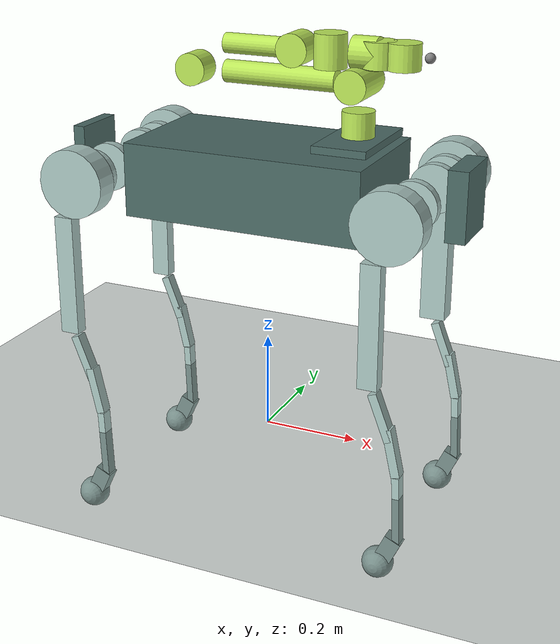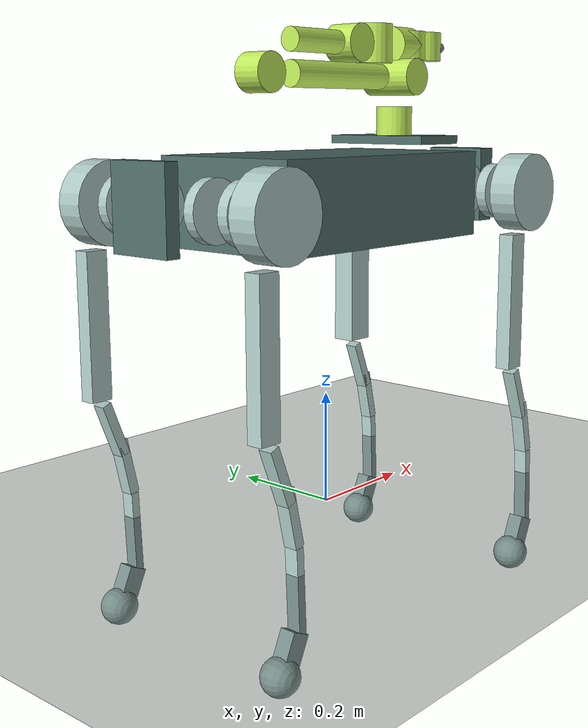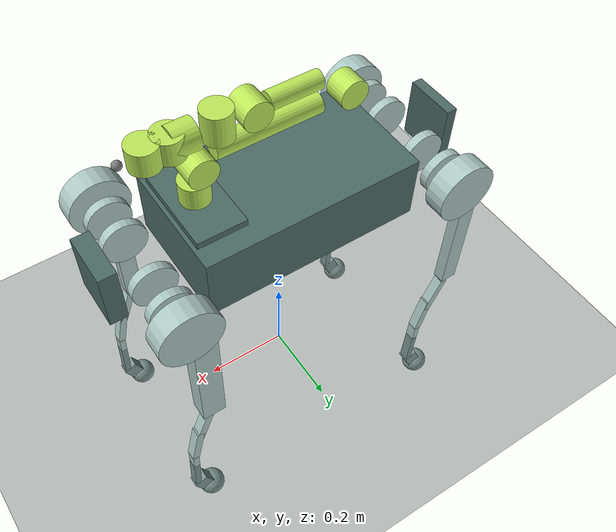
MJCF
<mujoco model="B2_Z1_upstream_reduced">
  <compiler angle="radian" inertiafromgeom="false" fusestatic="false" />
  <option timestep="0.002" gravity="0 0 -9.81" integrator="implicitfast" />
  <worldbody>
    <geom name="floor" type="plane" pos="0 0 0.00645788617892" size="0 0 .1" rgba=".08 .13 .12 1" friction=".9 .005 .0001" />
    <body name="base_link" pos="0 0 .55" quat="1 0 0 0">
      <freejoint name="root_joint" />
      <inertial pos="-0.01471378708 -0.00590183146022 0.00508924290254" mass="40.21057481000422" fullinertia="0.3131418427 1.55045245107 1.65516237106 -0.00856262343908 -0.0582928187771 -0.00489919374489" />
      <geom name="base_link_collision_0" type="box" size="0.25 0.14 0.075" pos="0 0 0" quat="1 0 0 0" group="1" rgba=".30 .42 .40 1" friction=".9 .005 .0001" />
      <body name="base_inertia" pos="0 0 0" quat="1 0 0 0" />
      <body name="f_dc_link" pos="0.41251 0.024997 0.04765" quat="0.270595753366 -0.653281028086 0.653283427726 -0.270596747322" />
      <body name="r_dc_link" pos="-0.4081 -0.025 0.024861" quat="0.270759065165 -0.653213358734 -0.653215758125 0.270760059721" />
      <body name="imu_link" pos="0 -0.02341 0.04927" quat="1 0 0 0" />
      <body name="head_Link" pos="0 0 0" quat="1 0 0 0">
        <geom name="head_Link_collision_0" type="box" size="0.02 0.06 0.07" pos="0.41 0 0.005" quat="1 0 0 0" group="1" rgba=".30 .42 .40 1" friction=".9 .005 .0001" />
      </body>
      <body name="tail_link" pos="0 0 0" quat="1 0 0 0">
        <geom name="tail_link_collision_0" type="box" size="0.0125 0.06 0.07" pos="-0.405 0 0.005" quat="1 0 0 0" group="1" rgba=".30 .42 .40 1" friction=".9 .005 .0001" />
      </body>
      <body name="FL_hip" pos="0.3285 0.072 0" quat="1 0 0 0">
        <joint name="FL_hip_joint" type="hinge" axis="1 0 0" range="-0.87 0.87" damping="0" armature="0" />
        <inertial pos="-0.00348458898995 -0.00896704317133 0" mass="2.9464" fullinertia="0.00346355660507 0.00502242226935 0.00397570587442 7.05634769467e-05 -3.77e-07 4e-09" />
        <geom name="FL_hip_collision_0" type="cylinder" size="0.07 0.025" pos="0 0.12 0" quat="0.707106781187 0.707106781187 0 0" group="1" rgba=".67 .78 .76 1" friction=".9 .005 .0001" />
        <body name="FL_thigh" pos="0 0.11973 0" quat="1 0 0 0">
          <joint name="FL_thigh_joint" type="hinge" axis="0 1 0" range="-0.94 4.69" damping="0" armature="0" />
          <inertial pos="-0.00592205763713 -0.0335174150622 -0.0545472532956" mass="4.809399999999999" fullinertia="0.0634780223591 0.0624161352934 0.00864497260489 0.000919632728203 -0.00374114010242 0.00873892336131" />
          <geom name="FL_thigh_collision_0" type="box" size="0.16 0.02225 0.027" pos="-0.025 0 -0.16" quat="0.707388269167 0 0.706825181105 0" group="1" rgba=".67 .78 .76 1" friction=".9 .005 .0001" />
          <body name="FL_calf" pos="0 -8.6984e-05 -0.35" quat="1 0 0 0">
            <joint name="FL_calf_joint" type="hinge" axis="0 1 0" range="-2.82 -0.43" damping="0" armature="0" />
            <inertial pos="0.00792094716981 0 -0.180894535849" mass="0.53" fullinertia="0.0167790547901 0.0169204830371 0.000407428247027 0 0.000226390006799 0" />
            <geom name="FL_calf_collision_0" type="box" size="0.05 0.01225 0.009" pos="-0.002 0 -0.03" quat="0.82533561491 0 0.564642473395 0" group="1" rgba=".67 .78 .76 1" friction=".9 .005 .0001" />
            <geom name="FL_calf_collision_1" type="box" size="0.05 0.01225 0.009" pos="0.022 0 -0.1" quat="0.780706951132 0 0.624897316728 0" group="1" rgba=".67 .78 .76 1" friction=".9 .005 .0001" />
            <geom name="FL_calf_collision_2" type="box" size="0.075 0.01225 0.0075" pos="0.036 0 -0.225" quat="0.721382357437 0 0.692536998563 0" group="1" rgba=".67 .78 .76 1" friction=".9 .005 .0001" />
            <geom name="FL_calf_collision_3" type="box" size="0.025 0.014 0.0175" pos="0.023 0 -0.31" quat="0.540302305868 0 0.841470984808 0" group="1" rgba=".67 .78 .76 1" friction=".9 .005 .0001" />
            <body name="FL_foot" pos="0 0 -0.35" quat="1 0 0 0">
              <geom name="FL_foot_collision_0" type="sphere" size="0.032" pos="0 0 0" quat="0.707388269167 0.706825181105 0 0" group="1" rgba=".67 .78 .76 1" friction=".9 .005 .0001" />
              <site name="FL_foot" size=".01" />
            </body>
          </body>
          <body name="FL_calf_rotor" pos="0 -0.05788 0" quat="1 0 0 0">
            <geom name="FL_calf_rotor_collision_0" type="cylinder" size="0.05 0.01" pos="0 0 0" quat="0.707106781187 0.707106781187 0 0" group="1" rgba=".67 .78 .76 1" friction=".9 .005 .0001" />
          </body>
        </body>
        <body name="FL_thigh_rotor" pos="0 -0.00798 0" quat="1 0 0 0">
          <geom name="FL_thigh_rotor_collision_0" type="cylinder" size="0.05 0.01" pos="0 0 0" quat="0.707106781187 0.707106781187 0 0" group="1" rgba=".67 .78 .76 1" friction=".9 .005 .0001" />
        </body>
      </body>
      <body name="FL_hip_rotor" pos="0.20205 0.072 0" quat="1 0 0 0">
        <geom name="FL_hip_rotor_collision_0" type="cylinder" size="0.05 0.01" pos="0 0 0" quat="0.707106781187 0 0.707106781187 0" group="1" rgba=".67 .78 .76 1" friction=".9 .005 .0001" />
      </body>
      <body name="FR_hip" pos="0.3285 -0.072 0" quat="1 0 0 0">
        <joint name="FR_hip_joint" type="hinge" axis="1 0 0" range="-0.87 0.87" damping="0" armature="0" />
        <inertial pos="-0.00829923301969 0.00998501620938 0.000235464537044" mass="2.5294" fullinertia="0.00278881228464 0.00483839313618 0.00370619843029 -0.000187239264829 -6.1609812788e-06 7.01528274205e-06" />
        <geom name="FR_hip_collision_0" type="cylinder" size="0.07 0.025" pos="0 -0.12 0" quat="0.707106781187 0.707106781187 0 0" group="1" rgba=".67 .78 .76 1" friction=".9 .005 .0001" />
        <body name="FR_thigh" pos="0 -0.11973 0" quat="1 0 0 0">
          <joint name="FR_thigh_joint" type="hinge" axis="0 1 0" range="-0.94 4.69" damping="0" armature="0" />
          <inertial pos="-0.00592205763713 0.0335174150622 -0.0545472532956" mass="4.809399999999999" fullinertia="0.0634781023591 0.0624164052934 0.00864501760489 -0.000919630728203 -0.00374110410242 -0.00873889436131" />
          <geom name="FR_thigh_collision_0" type="box" size="0.125 0.014 0.02" pos="-0.03 0 -0.2" quat="0.707388269167 0 0.706825181105 0" group="1" rgba=".67 .78 .76 1" friction=".9 .005 .0001" />
          <body name="FR_calf" pos="0 8.6986e-05 -0.35" quat="1 0 0 0">
            <joint name="FR_calf_joint" type="hinge" axis="0 1 0" range="-2.82 -0.43" damping="0" armature="0" />
            <inertial pos="0.00792094716981 0 -0.180894535849" mass="0.53" fullinertia="0.0167790547901 0.0169204830371 0.000407428247027 0 0.000226390006799 0" />
            <geom name="FR_calf_collision_0" type="box" size="0.05 0.01225 0.009" pos="-0.002 0 -0.03" quat="0.82533561491 0 0.564642473395 0" group="1" rgba=".67 .78 .76 1" friction=".9 .005 .0001" />
            <geom name="FR_calf_collision_1" type="box" size="0.05 0.01225 0.009" pos="0.022 0 -0.1" quat="0.780706951132 0 0.624897316728 0" group="1" rgba=".67 .78 .76 1" friction=".9 .005 .0001" />
            <geom name="FR_calf_collision_2" type="box" size="0.075 0.01225 0.0075" pos="0.036 0 -0.225" quat="0.721382357437 0 0.692536998563 0" group="1" rgba=".67 .78 .76 1" friction=".9 .005 .0001" />
            <geom name="FR_calf_collision_3" type="box" size="0.025 0.014 0.0175" pos="0.023 0 -0.31" quat="0.540302305868 0 0.841470984808 0" group="1" rgba=".67 .78 .76 1" friction=".9 .005 .0001" />
            <body name="FR_foot" pos="0 0 -0.35" quat="1 0 0 0">
              <geom name="FR_foot_collision_0" type="sphere" size="0.032" pos="0 0 0" quat="0.707388269167 0.706825181105 0 0" group="1" rgba=".67 .78 .76 1" friction=".9 .005 .0001" />
              <site name="FR_foot" size=".01" />
            </body>
          </body>
          <body name="FR_calf_rotor" pos="0 0.05788 0" quat="1 0 0 0">
            <geom name="FR_calf_rotor_collision_0" type="cylinder" size="0.05 0.01" pos="0 0 0" quat="0.707106781187 0.707106781187 0 0" group="1" rgba=".67 .78 .76 1" friction=".9 .005 .0001" />
          </body>
        </body>
        <body name="FR_thigh_rotor" pos="0 0.00798 0" quat="1 0 0 0">
          <geom name="FR_thigh_rotor_collision_0" type="cylinder" size="0.05 0.01" pos="0 0 0" quat="0.707106781187 0.707106781187 0 0" group="1" rgba=".67 .78 .76 1" friction=".9 .005 .0001" />
        </body>
      </body>
      <body name="FR_hip_rotor" pos="0.20205 -0.072 0" quat="1 0 0 0">
        <geom name="FR_hip_rotor_collision_0" type="cylinder" size="0.05 0.01" pos="0 0 0" quat="0.707106781187 0 0.707106781187 0" group="1" rgba=".67 .78 .76 1" friction=".9 .005 .0001" />
      </body>
      <body name="RL_hip" pos="-0.3285 0.072 0" quat="1 0 0 0">
        <joint name="RL_hip_joint" type="hinge" axis="1 0 0" range="-0.87 0.87" damping="0" armature="0" />
        <inertial pos="0.00829923301969 -0.00998501620938 0.000235464537044" mass="2.5294" fullinertia="0.00278881228464 0.00483839313618 0.00370619843029 -0.000187239264829 6.1609812788e-06 -7.01528274205e-06" />
        <geom name="RL_hip_collision_0" type="cylinder" size="0.07 0.025" pos="0 0.12 0" quat="0.707106781187 0.707106781187 0 0" group="1" rgba=".67 .78 .76 1" friction=".9 .005 .0001" />
        <body name="RL_thigh" pos="0 0.11973 0" quat="1 0 0 0">
          <joint name="RL_thigh_joint" type="hinge" axis="0 1 0" range="-0.94 4.69" damping="0" armature="0" />
          <inertial pos="-0.00592205763713 -0.0335174150622 -0.0545472532956" mass="4.809399999999999" fullinertia="0.0634781023591 0.0624164052934 0.00864501760489 0.000919630728203 -0.00374110410242 0.00873889436131" />
          <geom name="RL_thigh_collision_0" type="box" size="0.125 0.014 0.02" pos="-0.03 0 -0.2" quat="0.707388269167 0 0.706825181105 0" group="1" rgba=".67 .78 .76 1" friction=".9 .005 .0001" />
          <body name="RL_calf" pos="0 -8.6984e-05 -0.35" quat="1 0 0 0">
            <joint name="RL_calf_joint" type="hinge" axis="0 1 0" range="-2.82 -0.43" damping="0" armature="0" />
            <inertial pos="0.00792094716981 0 -0.180894535849" mass="0.53" fullinertia="0.0167790547901 0.0169204830371 0.000407428247027 0 0.000226390006799 0" />
            <geom name="RL_calf_collision_0" type="box" size="0.05 0.01225 0.009" pos="-0.002 0 -0.03" quat="0.82533561491 0 0.564642473395 0" group="1" rgba=".67 .78 .76 1" friction=".9 .005 .0001" />
            <geom name="RL_calf_collision_1" type="box" size="0.05 0.01225 0.009" pos="0.022 0 -0.1" quat="0.780706951132 0 0.624897316728 0" group="1" rgba=".67 .78 .76 1" friction=".9 .005 .0001" />
            <geom name="RL_calf_collision_2" type="box" size="0.075 0.01225 0.0075" pos="0.036 0 -0.225" quat="0.721382357437 0 0.692536998563 0" group="1" rgba=".67 .78 .76 1" friction=".9 .005 .0001" />
            <geom name="RL_calf_collision_3" type="box" size="0.025 0.014 0.0175" pos="0.023 0 -0.31" quat="0.540302305868 0 0.841470984808 0" group="1" rgba=".67 .78 .76 1" friction=".9 .005 .0001" />
            <body name="RL_foot" pos="0 0 -0.35" quat="1 0 0 0">
              <geom name="RL_foot_collision_0" type="sphere" size="0.032" pos="0 0 0" quat="0.707388269167 0.706825181105 0 0" group="1" rgba=".67 .78 .76 1" friction=".9 .005 .0001" />
              <site name="RL_foot" size=".01" />
            </body>
          </body>
          <body name="RL_calf_rotor" pos="0 -0.05788 0" quat="1 0 0 0">
            <geom name="RL_calf_rotor_collision_0" type="cylinder" size="0.05 0.01" pos="0 0 0" quat="0.707106781187 0.707106781187 0 0" group="1" rgba=".67 .78 .76 1" friction=".9 .005 .0001" />
          </body>
        </body>
        <body name="RL_thigh_rotor" pos="0 -0.00798 0" quat="1 0 0 0">
          <geom name="RL_thigh_rotor_collision_0" type="cylinder" size="0.05 0.01" pos="0 0 0" quat="0.707106781187 0.707106781187 0 0" group="1" rgba=".67 .78 .76 1" friction=".9 .005 .0001" />
        </body>
      </body>
      <body name="RL_hip_rotor" pos="-0.20205 0.072 0" quat="1 0 0 0">
        <geom name="RL_hip_rotor_collision_0" type="cylinder" size="0.05 0.01" pos="0 0 0" quat="0.707106781187 0 0.707106781187 0" group="1" rgba=".67 .78 .76 1" friction=".9 .005 .0001" />
      </body>
      <body name="RR_hip" pos="-0.3285 -0.072 0" quat="1 0 0 0">
        <joint name="RR_hip_joint" type="hinge" axis="1 0 0" range="-0.87 0.87" damping="0" armature="0" />
        <inertial pos="0.00348458898995 0.00896704317133 0" mass="2.9464" fullinertia="0.00346355660507 0.00502242226935 0.00397570587442 7.05634769467e-05 3.77e-07 -4e-09" />
        <geom name="RR_hip_collision_0" type="cylinder" size="0.07 0.025" pos="0 -0.12 0" quat="0.707106781187 0.707106781187 0 0" group="1" rgba=".67 .78 .76 1" friction=".9 .005 .0001" />
        <body name="RR_thigh" pos="0 -0.11973 0" quat="1 0 0 0">
          <joint name="RR_thigh_joint" type="hinge" axis="0 1 0" range="-0.94 4.69" damping="0" armature="0" />
          <inertial pos="-0.00592205763713 0.0335174150622 -0.0545472532956" mass="4.809399999999999" fullinertia="0.0634780223591 0.0624161352934 0.00864497260489 -0.000919632728203 -0.00374114010242 -0.00873892336131" />
          <geom name="RR_thigh_collision_0" type="box" size="0.125 0.014 0.02" pos="-0.03 0 -0.2" quat="0.707388269167 0 0.706825181105 0" group="1" rgba=".67 .78 .76 1" friction=".9 .005 .0001" />
          <body name="RR_calf" pos="0 8.6986e-05 -0.35" quat="1 0 0 0">
            <joint name="RR_calf_joint" type="hinge" axis="0 1 0" range="-2.82 -0.43" damping="0" armature="0" />
            <inertial pos="0.00792094716981 -2.06792150943e-05 -0.180894535849" mass="0.53" fullinertia="0.0167790555168 0.0169204830371 0.000407428973726 -1.5817391007e-07 0.000226390006799 -1.9645712591e-06" />
            <geom name="RR_calf_collision_0" type="box" size="0.05 0.01225 0.009" pos="-0.002 0 -0.03" quat="0.82533561491 0 0.564642473395 0" group="1" rgba=".67 .78 .76 1" friction=".9 .005 .0001" />
            <geom name="RR_calf_collision_1" type="box" size="0.05 0.01225 0.009" pos="0.022 0 -0.1" quat="0.780706951132 0 0.624897316728 0" group="1" rgba=".67 .78 .76 1" friction=".9 .005 .0001" />
            <geom name="RR_calf_collision_2" type="box" size="0.075 0.01225 0.0075" pos="0.036 0 -0.225" quat="0.721382357437 0 0.692536998563 0" group="1" rgba=".67 .78 .76 1" friction=".9 .005 .0001" />
            <geom name="RR_calf_collision_3" type="box" size="0.025 0.014 0.0175" pos="0.023 0 -0.31" quat="0.540302305868 0 0.841470984808 0" group="1" rgba=".67 .78 .76 1" friction=".9 .005 .0001" />
            <body name="RR_foot" pos="0 -8.6984e-05 -0.35" quat="1 0 0 0">
              <geom name="RR_foot_collision_0" type="sphere" size="0.032" pos="0 0 0" quat="0.707388269167 0.706825181105 0 0" group="1" rgba=".67 .78 .76 1" friction=".9 .005 .0001" />
              <site name="RR_foot" size=".01" />
            </body>
          </body>
          <body name="RR_calf_rotor" pos="0 0.05788 0" quat="1 0 0 0">
            <geom name="RR_calf_rotor_collision_0" type="cylinder" size="0.05 0.01" pos="0 0 0" quat="0.707106781187 0.707106781187 0 0" group="1" rgba=".67 .78 .76 1" friction=".9 .005 .0001" />
          </body>
        </body>
        <body name="RR_thigh_rotor" pos="0 0.00798 0" quat="1 0 0 0">
          <geom name="RR_thigh_rotor_collision_0" type="cylinder" size="0.05 0.01" pos="0 0 0" quat="0.707106781187 0.707106781187 0 0" group="1" rgba=".67 .78 .76 1" friction=".9 .005 .0001" />
        </body>
      </body>
      <body name="RR_hip_rotor" pos="-0.20205 -0.072 0" quat="1 0 0 0">
        <geom name="RR_hip_rotor_collision_0" type="cylinder" size="0.05 0.01" pos="0 0 0" quat="0.707106781187 0 0.707106781187 0" group="1" rgba=".67 .78 .76 1" friction=".9 .005 .0001" />
      </body>
      <body name="f_oc_link" pos="0.39079 0 -0.013433" quat="0.499998163397 -0.499999999997 0.500001836603 -0.499999999997" />
      <body name="r_oc_link" pos="-0.38451 0 -0.023249" quat="0.499998163397 -0.499999999997 -0.500001836603 0.499999999997" />
      <body name="arm_base" pos="0.19 0 0.0952" quat="1 0 0 0">
        <geom name="arm_base_collision_0" type="box" size="0.1025 0.055 0.0075" pos="0 0 0" quat="0.707388269167 0 0 0.706825181105" group="1" rgba=".30 .42 .40 1" friction=".9 .005 .0001" />
        <body name="link00" pos="0 0 0.0075" quat="1 0 0 0">
          <geom name="link00_collision_0" type="cylinder" size="0.0325 0.0255" pos="0 0 0.0255" quat="1 0 0 0" group="1" rgba=".74 .91 .35 1" friction=".9 .005 .0001" />
          <body name="link01" pos="0 0 0.0585" quat="1 0 0 0">
            <joint name="joint1" type="hinge" axis="0 0 1" range="-2.6179938779914944 2.6179938779914944" damping="0" armature="0" />
            <inertial pos="2.47e-06 -0.00025198 0.02317169" mass="0.67332551" fullinertia="0.00128328 0.00071931 0.00083936 -6e-08 -4e-07 5e-07" />
            <body name="link02" pos="0 0 0.045" quat="1 0 0 0">
              <joint name="joint2" type="hinge" axis="0 1 0" range="0.0 2.9670597283903604" damping="0" armature="0" />
              <inertial pos="-0.11012601 0.00240029 0.00158266" mass="1.19132258" fullinertia="0.00102138 0.02429457 0.02466114 0.00062358 5.13e-06 -2.1e-06" />
              <geom name="link02_collision_0" type="cylinder" size="0.0325 0.051" pos="0 0 0" quat="0.707106781187 0.707106781187 0 0" group="1" rgba=".74 .91 .35 1" friction=".9 .005 .0001" />
              <geom name="link02_collision_1" type="cylinder" size="0.0225 0.1175" pos="-0.1625 0 0" quat="0.707106781187 0 0.707106781187 0" group="1" rgba=".74 .91 .35 1" friction=".9 .005 .0001" />
              <geom name="link02_collision_2" type="cylinder" size="0.0325 0.0255" pos="-0.35 0 0" quat="0.707106781187 0.707106781187 0 0" group="1" rgba=".74 .91 .35 1" friction=".9 .005 .0001" />
              <body name="link03" pos="-0.35 0 0" quat="1 0 0 0">
                <joint name="joint3" type="hinge" axis="0 1 0" range="-2.8797932657906435 0.0" damping="0" armature="0" />
                <inertial pos="0.10609208 -0.00541815 0.03476383" mass="0.83940874" fullinertia="0.00108061 0.00954238 0.00886621 -8.669e-05 -0.00208102 -1.332e-05" />
                <geom name="link03_collision_0" type="cylinder" size="0.02 0.058" pos="0.128 0 0.055" quat="0.707106781187 0 0.707106781187 0" group="1" rgba=".74 .91 .35 1" friction=".9 .005 .0001" />
                <geom name="link03_collision_1" type="cylinder" size="0.0325 0.0295" pos="0.2205 0 0.055" quat="0.5 -0.5 0.5 0.5" group="1" rgba=".74 .91 .35 1" friction=".9 .005 .0001" />
                <body name="link04" pos="0.218 0 0.057" quat="1 0 0 0">
                  <joint name="joint4" type="hinge" axis="0 1 0" range="-1.5184364492350666 1.5184364492350666" damping="0" armature="0" />
                  <inertial pos="0.139023503959 0.00153366501065 0.000431240332563" mass="2.04443819" fullinertia="0.0012735104045 0.0139834431212 0.0140614088682 0.000184444979671 0.000167667684962 -1.99869151526e-06" />
                  <geom name="link04_collision_0" type="cylinder" size="0.0325 0.0335" pos="0.072 0 0" quat="1 0 0 0" group="1" rgba=".74 .91 .35 1" friction=".9 .005 .0001" />
                  <body name="link05" pos="0.07 0 0" quat="1 0 0 0">
                    <body name="link06" pos="0.0492 0 0" quat="1 0 0 0">
                      <geom name="link06_collision_0" type="cylinder" size="0.0325 0.0255" pos="0.0255 0 0" quat="0.707106781187 0 0.707106781187 0" group="1" rgba=".74 .91 .35 1" friction=".9 .005 .0001" />
                      <body name="gripperStator" pos="0.051 0 0" quat="1 0 0 0">
                        <geom name="gripperStator_collision_0" type="cylinder" size="0.0325 0.0255" pos="0 0 0" quat="1 0 0 0" group="1" rgba=".74 .91 .35 1" friction=".9 .005 .0001" />
                        <body name="gripperMover" pos="0.049 0 0" quat="1 0 0 0">
                          <geom name="gripperMover_collision_0" type="cylinder" size="0.0325 0.0255" pos="0 0 0" quat="1 0 0 0" group="1" rgba=".74 .91 .35 1" friction=".9 .005 .0001" />
                          <body name="gripperCenterLink" pos="0.05 0 0" quat="1 0 0 0">
                            <site name="gripperCenterLink" size=".01" />
                          </body>
                        </body>
                      </body>
                    </body>
                  </body>
                </body>
              </body>
            </body>
          </body>
        </body>
      </body>
    </body>
  </worldbody>
  <actuator>
    <motor name="FL_hip_joint" joint="FL_hip_joint" ctrllimited="true" ctrlrange="-200 200" />
    <motor name="FL_thigh_joint" joint="FL_thigh_joint" ctrllimited="true" ctrlrange="-200 200" />
    <motor name="FL_calf_joint" joint="FL_calf_joint" ctrllimited="true" ctrlrange="-320 320" />
    <motor name="FR_hip_joint" joint="FR_hip_joint" ctrllimited="true" ctrlrange="-200 200" />
    <motor name="FR_thigh_joint" joint="FR_thigh_joint" ctrllimited="true" ctrlrange="-200 200" />
    <motor name="FR_calf_joint" joint="FR_calf_joint" ctrllimited="true" ctrlrange="-320 320" />
    <motor name="RL_hip_joint" joint="RL_hip_joint" ctrllimited="true" ctrlrange="-200 200" />
    <motor name="RL_thigh_joint" joint="RL_thigh_joint" ctrllimited="true" ctrlrange="-200 200" />
    <motor name="RL_calf_joint" joint="RL_calf_joint" ctrllimited="true" ctrlrange="-320 320" />
    <motor name="RR_hip_joint" joint="RR_hip_joint" ctrllimited="true" ctrlrange="-200 200" />
    <motor name="RR_thigh_joint" joint="RR_thigh_joint" ctrllimited="true" ctrlrange="-200 200" />
    <motor name="RR_calf_joint" joint="RR_calf_joint" ctrllimited="true" ctrlrange="-320 320" />
    <motor name="joint1" joint="joint1" ctrllimited="true" ctrlrange="-30.0 30.0" />
    <motor name="joint2" joint="joint2" ctrllimited="true" ctrlrange="-60.0 60.0" />
    <motor name="joint3" joint="joint3" ctrllimited="true" ctrlrange="-30.0 30.0" />
    <motor name="joint4" joint="joint4" ctrllimited="true" ctrlrange="-30.0 30.0" />
  </actuator>
</mujoco>
